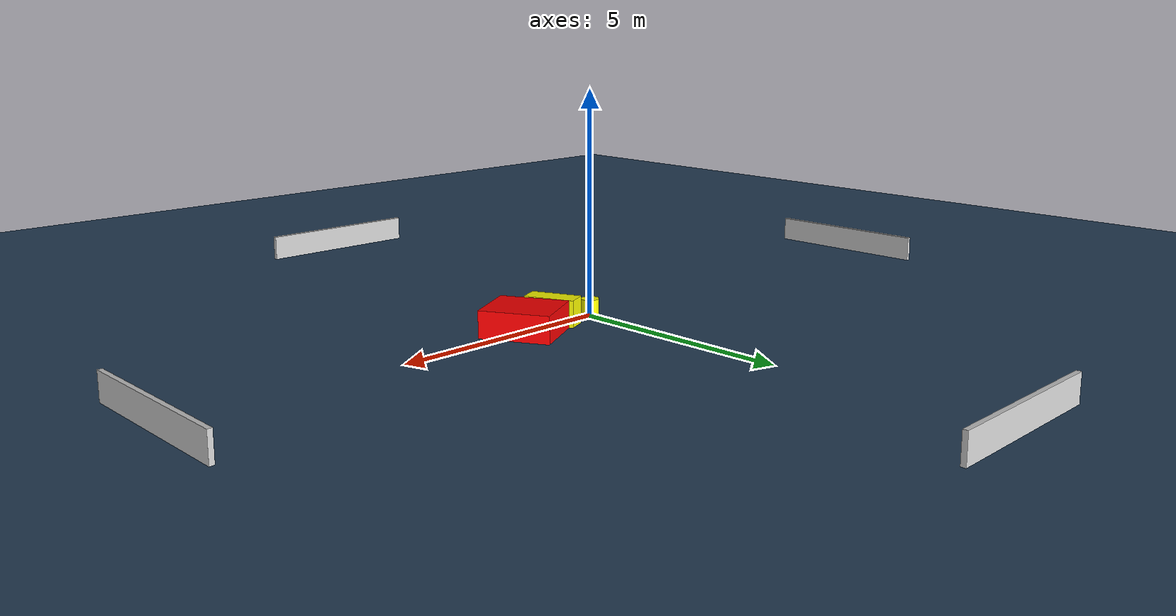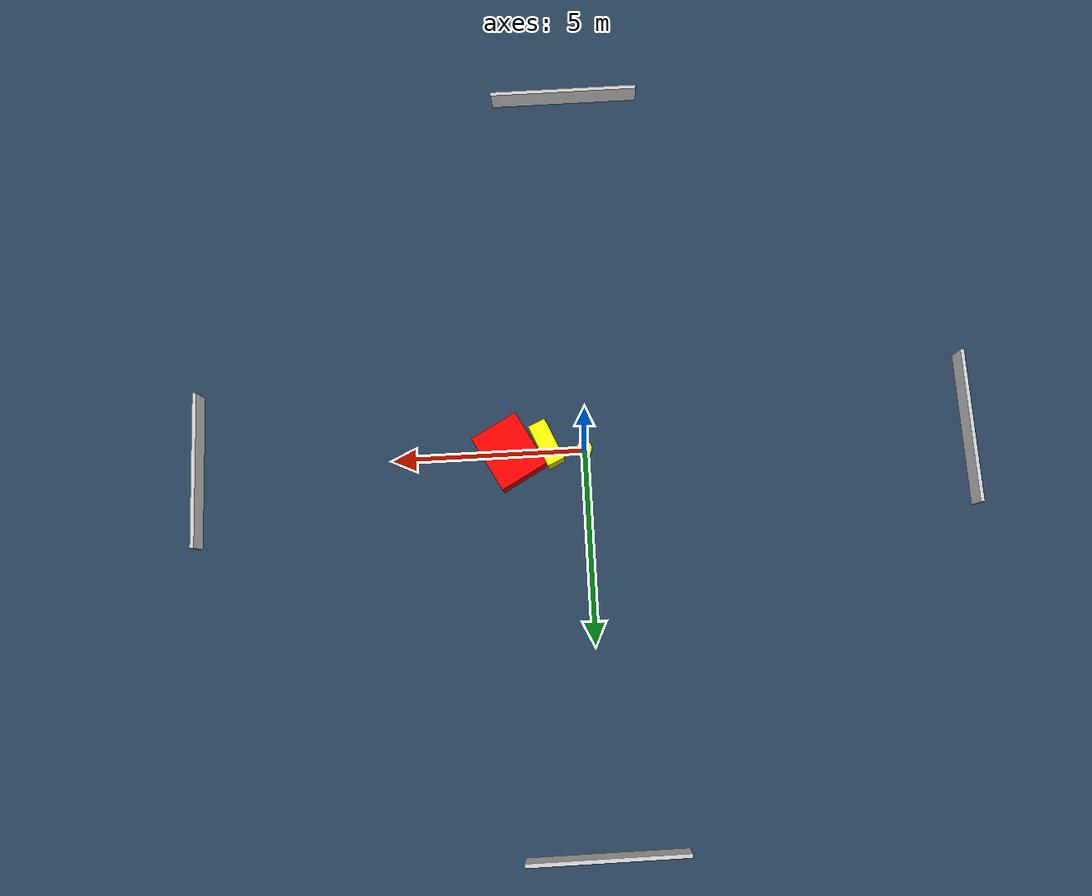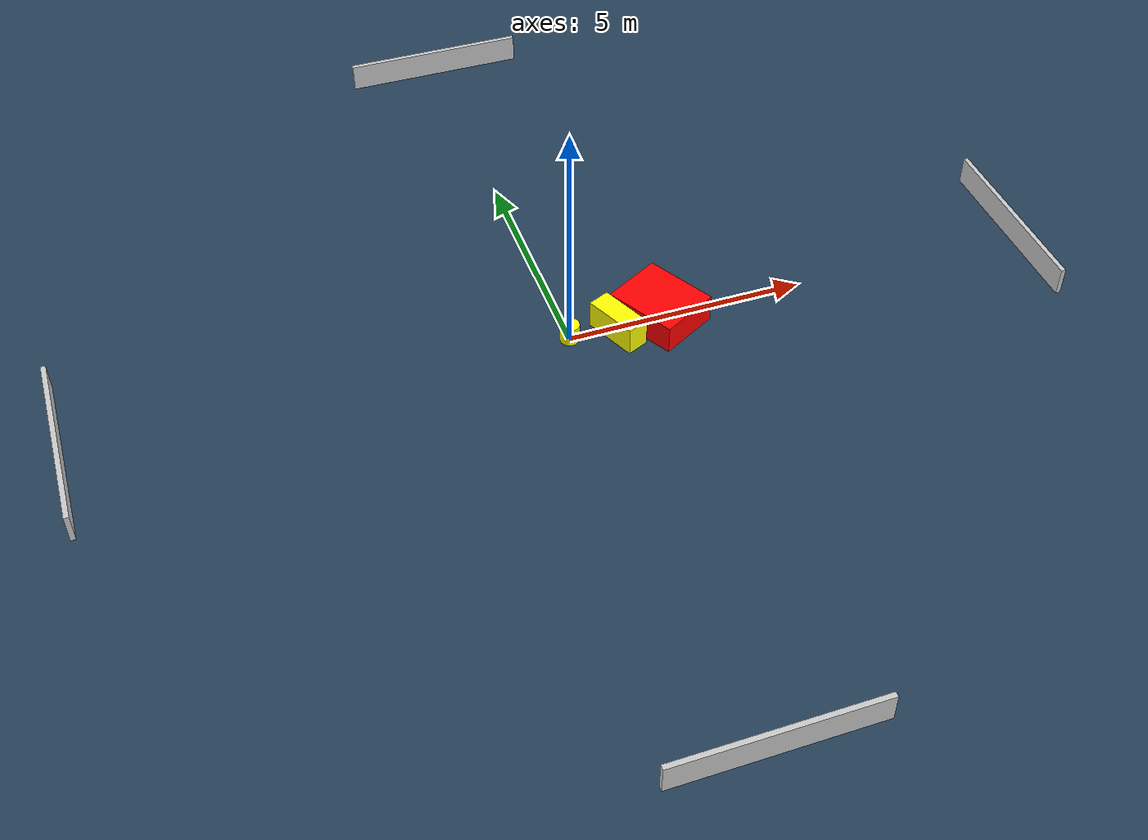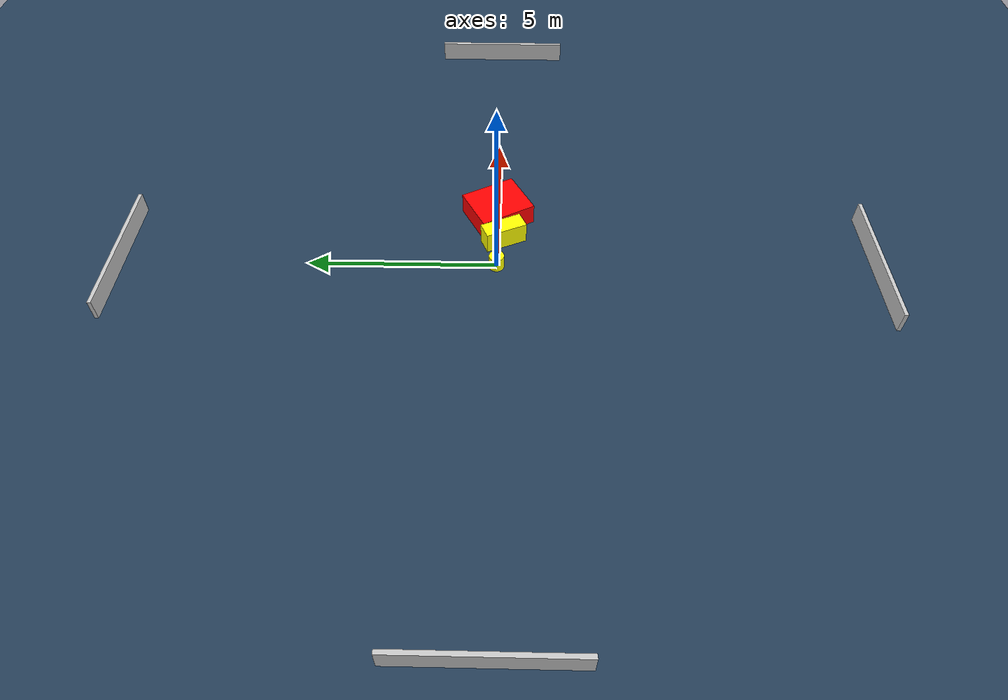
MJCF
<?xml version="1.0" ?>
<mujoco model="generated_environment">
  <option timestep="0.01" integrator="RK4" cone="elliptic"/>
  <default>
    <geom density="1"/>
  </default>
  <asset>
    <texture builtin="gradient" height="3072" name="skybox" rgb1="0.3 0.5 0.7" rgb2="0 0 0" type="skybox" width="512"/>
    <texture builtin="checker" height="300" name="groundplane" rgb1="0.2 0.3 0.4" rgb2="0.1 0.2 0.3" type="2d" width="300"/>
    <material name="groundplane" reflectance="0.2" texrepeat="5 5" texture="groundplane"/>
  </asset>
  <worldbody>
    <light dir="0 0 -1" directional="true" pos="0 0 1.5"/>
    <geom condim="3" friction="0.5 0.005 0.001" material="groundplane" name="floor" pos="0 0 0" size="0 0 0.05" type="plane"/>
    <body name="walls">
      <geom name="wall_1" condim="4" pos="-10.0 0.0 0.3" rgba="0.800000011920929 0.800000011920929 0.800000011920929 1.0" size="0.05 2.0 0.3" type="box"/>
      <geom name="wall_2" condim="4" pos="10.0 0.0 0.3" rgba="0.800000011920929 0.800000011920929 0.800000011920929 1.0" size="0.05 2.0 0.3" type="box"/>
      <geom name="wall_3" condim="4" pos="0.0 -10.0 0.3" rgba="0.800000011920929 0.800000011920929 0.800000011920929 1.0" size="2.0 0.05 0.3" type="box"/>
      <geom name="wall_4" condim="4" pos="0.0 10.0 0.3" rgba="0.800000011920929 0.800000011920929 0.800000011920929 1.0" size="2.0 0.05 0.3" type="box"/>
    </body>
    <body name="robot">
      <joint name="joint_x" type="slide" pos="0 0 0" axis="1 0 0"/>
      <joint name="joint_y" type="slide" pos="0 0 0" axis="0 1 0"/>
      <geom name="robot" type="cylinder" pos="0.0 0.0 0.2" size="0.2 0.2 0.0" mass="5.0" friction="1.0 0.005 0.0001" condim="4" rgba="1.0 1.0 0.0 1.0"/>
    </body>
    <body name="obstacle_1_movable">
      <geom name="obstacle_1_movable" condim="4" pos="0.9673852804338575 -0.17013538382682514 0.3" euler="0 0 23.81980713311879" friction="0.0 0.005 0.001" rgba="1.0 1.0 0.0 1.0" size="0.23516697207910825 0.5718337620034009 0.3" type="box" mass="0.1"/>
      <joint type="free"/>
    </body>
    <body name="obstacle_2_static">
      <geom name="obstacle_2_static" condim="4" pos="1.9370671835367297 -0.0008741225464056045 0.3" euler="0 0 118.59502557577206" friction="0.0 0.005 0.001" rgba="1.0 0.0 0.0 1.0" size="0.7784257601268216 0.655575065456857 0.3" type="box"/>
    </body>
  </worldbody>
  <actuator>
    <motor name="actuator_x" joint="joint_x" gear="1" ctrlrange="-1 1"/>
    <motor name="actuator_y" joint="joint_y" gear="1" ctrlrange="-1 1"/>
  </actuator>
</mujoco>
